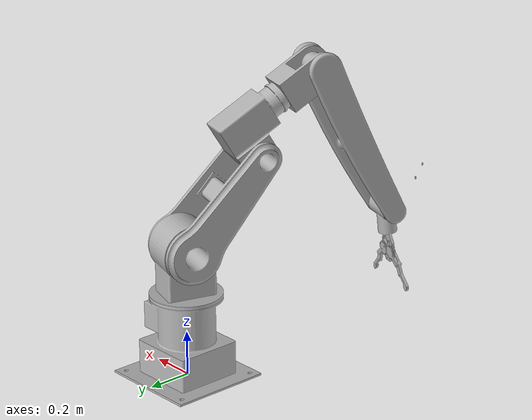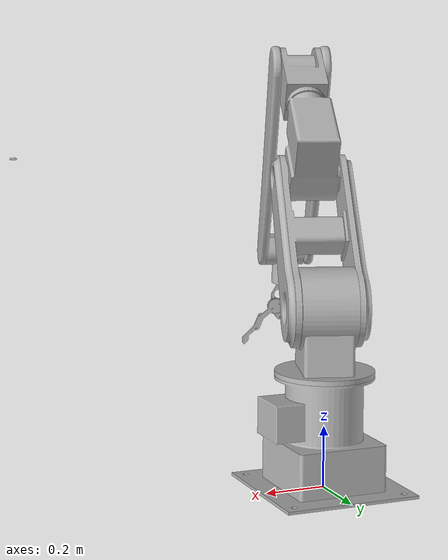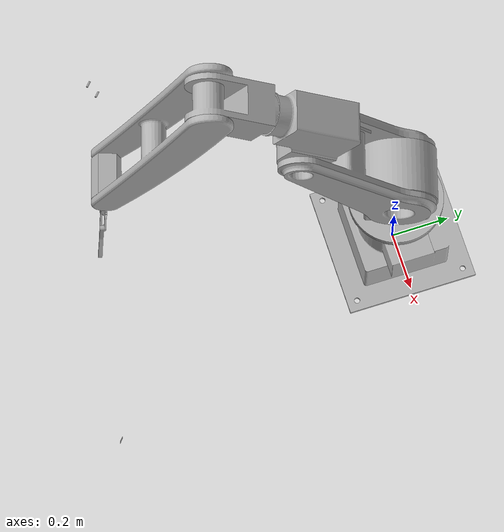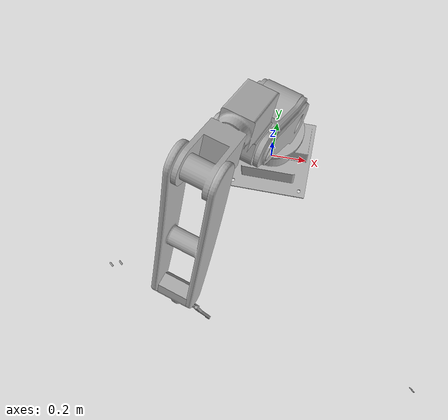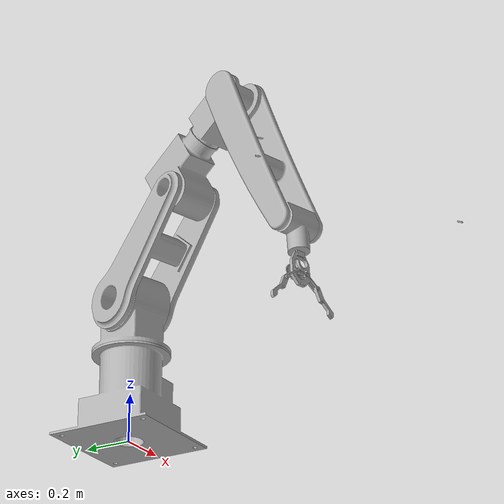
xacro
<?xml version="1.0" ?>
<robot name="gripperone" xmlns:xacro="http://www.ros.org/wiki/xacro">

<xacro:include filename="$(find gripperone_description)/urdf/materials.xacro" />
<xacro:include filename="$(find gripperone_description)/urdf/gripperone.trans" />
<xacro:include filename="$(find gripperone_description)/urdf/gripperone.gazebo" />
<link name="base_link">
  <inertial>
    <origin rpy="0 0 0" xyz="0.013100742072346745 3.232305809001723e-17 0.128434649849364"/>
    <mass value="141.36352349403447"/>
    <inertia ixx="2.770677" ixy="0.0" ixz="-0.206615" iyy="3.022714" iyz="0.0" izz="2.748975"/>
  </inertial>
  <visual>
    <origin rpy="0 0 0" xyz="0 0 0"/>
    <geometry>
      <mesh filename="package://gripperone_description/meshes/base_link.stl" scale="0.001 0.001 0.001"/>
    </geometry>
    <material name="silver"/>
  </visual>
  <collision>
    <origin rpy="0 0 0" xyz="0 0 0"/>
    <geometry>
      <mesh filename="package://gripperone_description/meshes/base_link.stl" scale="0.001 0.001 0.001"/>
    </geometry>
  </collision>
</link>

<link name="joint1_1">
  <inertial>
    <origin rpy="0 0 0" xyz="-1.0718000267990909e-07 -4.7694119584645194e-08 0.09307579320414244"/>
    <mass value="113.94031727647719"/>
    <inertia ixx="2.254675" ixy="-0.086553" ixz="1e-06" iyy="2.372499" iyz="0.0" izz="0.859498"/>
  </inertial>
  <visual>
    <origin rpy="0 0 0" xyz="-0.0 -0.0 -0.37"/>
    <geometry>
      <mesh filename="package://gripperone_description/meshes/joint1_1.stl" scale="0.001 0.001 0.001"/>
    </geometry>
    <material name="silver"/>
  </visual>
  <collision>
    <origin rpy="0 0 0" xyz="-0.0 -0.0 -0.37"/>
    <geometry>
      <mesh filename="package://gripperone_description/meshes/joint1_1.stl" scale="0.001 0.001 0.001"/>
    </geometry>
  </collision>
</link>

<link name="joint2_1">
  <inertial>
    <origin rpy="0 0 0" xyz="-0.10327295074466161 0.6089273418612103 0.3786719821622193"/>
    <mass value="96.27136209757765"/>
    <inertia ixx="2.48842" ixy="-0.480346" ixz="-1.266892" iyy="3.142308" iyz="-0.670206" izz="2.85203"/>
  </inertial>
  <visual>
    <origin rpy="0 0 0" xyz="-0.236821 0.537664 -0.329554"/>
    <geometry>
      <mesh filename="package://gripperone_description/meshes/joint2_1.stl" scale="0.001 0.001 0.001"/>
    </geometry>
    <material name="silver"/>
  </visual>
  <collision>
    <origin rpy="0 0 0" xyz="-0.236821 0.537664 -0.329554"/>
    <geometry>
      <mesh filename="package://gripperone_description/meshes/joint2_1.stl" scale="0.001 0.001 0.001"/>
    </geometry>
  </collision>
</link>

<link name="joint3_1">
  <inertial>
    <origin rpy="0 0 0" xyz="-0.3006557452257342 0.8620225825226824 0.7038618877101326"/>
    <mass value="89.40771247233054"/>
    <inertia ixx="1.288648" ixy="-0.616924" ixz="-0.662613" iyy="2.128459" iyz="-0.350533" izz="1.811078"/>
  </inertial>
  <visual>
    <origin rpy="0 0 0" xyz="-0.705555 0.644442 -0.350522"/>
    <geometry>
      <mesh filename="package://gripperone_description/meshes/joint3_1.stl" scale="0.001 0.001 0.001"/>
    </geometry>
    <material name="silver"/>
  </visual>
  <collision>
    <origin rpy="0 0 0" xyz="-0.705555 0.644442 -0.350522"/>
    <geometry>
      <mesh filename="package://gripperone_description/meshes/joint3_1.stl" scale="0.001 0.001 0.001"/>
    </geometry>
  </collision>
</link>

<link name="hand1_1">
  <inertial>
    <origin rpy="0 0 0" xyz="0.024678634651751352 -0.040622167017643096 -0.05014720983574655"/>
    <mass value="0.48552512703105294"/>
    <inertia ixx="0.001689" ixy="0.000363" ixz="0.000454" iyy="0.001286" iyz="-0.000776" izz="0.00087"/>
  </inertial>
  <visual>
    <origin rpy="0 0 0" xyz="-1.175378 -0.593511 -0.483357"/>
    <geometry>
      <mesh filename="package://gripperone_description/meshes/hand1_1.stl" scale="0.001 0.001 0.001"/>
    </geometry>
    <material name="silver"/>
  </visual>
  <collision>
    <origin rpy="0 0 0" xyz="-1.175378 -0.593511 -0.483357"/>
    <geometry>
      <mesh filename="package://gripperone_description/meshes/hand1_1.stl" scale="0.001 0.001 0.001"/>
    </geometry>
  </collision>
</link>

<link name="hand2_1">
  <inertial>
    <origin rpy="0 0 0" xyz="-0.019166317785168863 0.04449500540777651 -0.035313298052848774"/>
    <mass value="0.4769330474880143"/>
    <inertia ixx="0.008656" ixy="0.002098" ixz="-0.000469" iyy="0.006282" iyz="0.000229" izz="0.004948"/>
  </inertial>
  <visual>
    <origin rpy="0 0 0" xyz="-1.1476 -0.646015 -0.483203"/>
    <geometry>
      <mesh filename="package://gripperone_description/meshes/hand2_1.stl" scale="0.001 0.001 0.001"/>
    </geometry>
    <material name="silver"/>
  </visual>
  <collision>
    <origin rpy="0 0 0" xyz="-1.1476 -0.646015 -0.483203"/>
    <geometry>
      <mesh filename="package://gripperone_description/meshes/hand2_1.stl" scale="0.001 0.001 0.001"/>
    </geometry>
  </collision>
</link>

<link name="joint4_1">
  <inertial>
    <origin rpy="0 0 0" xyz="-0.28427456294080167 1.1902164027055213 -0.6331625187105112"/>
    <mass value="67.90970433611581"/>
    <inertia ixx="2.883631" ixy="-0.972726" ixz="1.982823" iyy="4.207821" iyz="1.048961" izz="3.17807"/>
  </inertial>
  <visual>
    <origin rpy="0 0 0" xyz="-1.169729 0.720857 -1.590984"/>
    <geometry>
      <mesh filename="package://gripperone_description/meshes/joint4_1.stl" scale="0.001 0.001 0.001"/>
    </geometry>
    <material name="silver"/>
  </visual>
  <collision>
    <origin rpy="0 0 0" xyz="-1.169729 0.720857 -1.590984"/>
    <geometry>
      <mesh filename="package://gripperone_description/meshes/joint4_1.stl" scale="0.001 0.001 0.001"/>
    </geometry>
  </collision>
</link>

<link name="joint5_1">
  <inertial>
    <origin rpy="0 0 0" xyz="-0.47198752110351117 0.4278031143628675 -1.3488693163735603"/>
    <mass value="9.640341866039392"/>
    <inertia ixx="0.056508" ixy="0.001921" ixz="-0.000566" iyy="0.053876" iyz="-0.000606" izz="0.01747"/>
  </inertial>
  <visual>
    <origin rpy="0 0 0" xyz="-1.642416 -0.198355 -2.005218"/>
    <geometry>
      <mesh filename="package://gripperone_description/meshes/joint5_1.stl" scale="0.001 0.001 0.001"/>
    </geometry>
    <material name="silver"/>
  </visual>
  <collision>
    <origin rpy="0 0 0" xyz="-1.642416 -0.198355 -2.005218"/>
    <geometry>
      <mesh filename="package://gripperone_description/meshes/joint5_1.stl" scale="0.001 0.001 0.001"/>
    </geometry>
  </collision>
</link>

<joint name="Rev45" type="continuous">
  <origin rpy="0 0 0" xyz="0.0 0.0 0.37"/>
  <parent link="base_link"/>
  <child link="joint1_1"/>
  <axis xyz="0.0 0.0 -1.0"/>
</joint>

<joint name="Rev47" type="continuous">
  <origin rpy="0 0 0" xyz="0.236821 -0.537664 -0.040446"/>
  <parent link="joint1_1"/>
  <child link="joint2_1"/>
  <axis xyz="0.467614 -0.883933 -0.0"/>
</joint>

<joint name="Rev48" type="continuous">
  <origin rpy="0 0 0" xyz="0.468734 -0.106778 0.020968"/>
  <parent link="joint2_1"/>
  <child link="joint3_1"/>
  <axis xyz="-0.467614 0.883933 0.0"/>
</joint>

<joint name="Rev70" type="continuous">
  <origin rpy="0 0 0" xyz="-0.467038 0.395156 -1.521861"/>
  <parent link="joint5_1"/>
  <child link="hand1_1"/>
  <axis xyz="0.883832 0.467561 -0.015075"/>
</joint>

<joint name="Rev72" type="continuous">
  <origin rpy="0 0 0" xyz="-0.494816 0.44766 -1.522015"/>
  <parent link="joint5_1"/>
  <child link="hand2_1"/>
  <axis xyz="0.883832 0.467561 -0.015075"/>
</joint>

<joint name="Rev73" type="continuous">
  <origin rpy="0 0 0" xyz="0.464174 -0.076415 1.240462"/>
  <parent link="joint3_1"/>
  <child link="joint4_1"/>
  <axis xyz="0.467614 -0.883933 0.0"/>
</joint>

<joint name="Rev74" type="continuous">
  <origin rpy="0 0 0" xyz="0.472687 0.919212 0.414234"/>
  <parent link="joint4_1"/>
  <child link="joint5_1"/>
  <axis xyz="0.467614 -0.883933 0.0"/>
</joint>

</robot>

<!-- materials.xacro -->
<robot name="gripperone" xmlns:xacro="http://www.ros.org/wiki/xacro" >

<material name="silver">
  <color rgba="0.700 0.700 0.700 1.000"/>
</material>

</robot>

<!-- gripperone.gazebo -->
<robot name="gripperone" xmlns:xacro="http://www.ros.org/wiki/xacro" >

<xacro:property name="body_color" value="Gazebo/Silver" />

<gazebo>
  <plugin filename="libgazebo_ros_control.so" name="control"/>
</gazebo>
<gazebo reference="base_link">
  <material>${body_color}</material>
  <mu1>0.2</mu1>
  <mu2>0.2</mu2>
  <selfCollide>true</selfCollide>
  <gravity>true</gravity>
</gazebo>

<gazebo reference="joint1_1">
  <material>${body_color}</material>
  <mu1>0.2</mu1>
  <mu2>0.2</mu2>
  <selfCollide>true</selfCollide>
</gazebo>

<gazebo reference="joint2_1">
  <material>${body_color}</material>
  <mu1>0.2</mu1>
  <mu2>0.2</mu2>
  <selfCollide>true</selfCollide>
</gazebo>

<gazebo reference="joint3_1">
  <material>${body_color}</material>
  <mu1>0.2</mu1>
  <mu2>0.2</mu2>
  <selfCollide>true</selfCollide>
</gazebo>

<gazebo reference="hand1_1">
  <material>${body_color}</material>
  <mu1>0.2</mu1>
  <mu2>0.2</mu2>
  <selfCollide>true</selfCollide>
</gazebo>

<gazebo reference="hand2_1">
  <material>${body_color}</material>
  <mu1>0.2</mu1>
  <mu2>0.2</mu2>
  <selfCollide>true</selfCollide>
</gazebo>

<gazebo reference="joint4_1">
  <material>${body_color}</material>
  <mu1>0.2</mu1>
  <mu2>0.2</mu2>
  <selfCollide>true</selfCollide>
</gazebo>

<gazebo reference="joint5_1">
  <material>${body_color}</material>
  <mu1>0.2</mu1>
  <mu2>0.2</mu2>
  <selfCollide>true</selfCollide>
</gazebo>

</robot>
